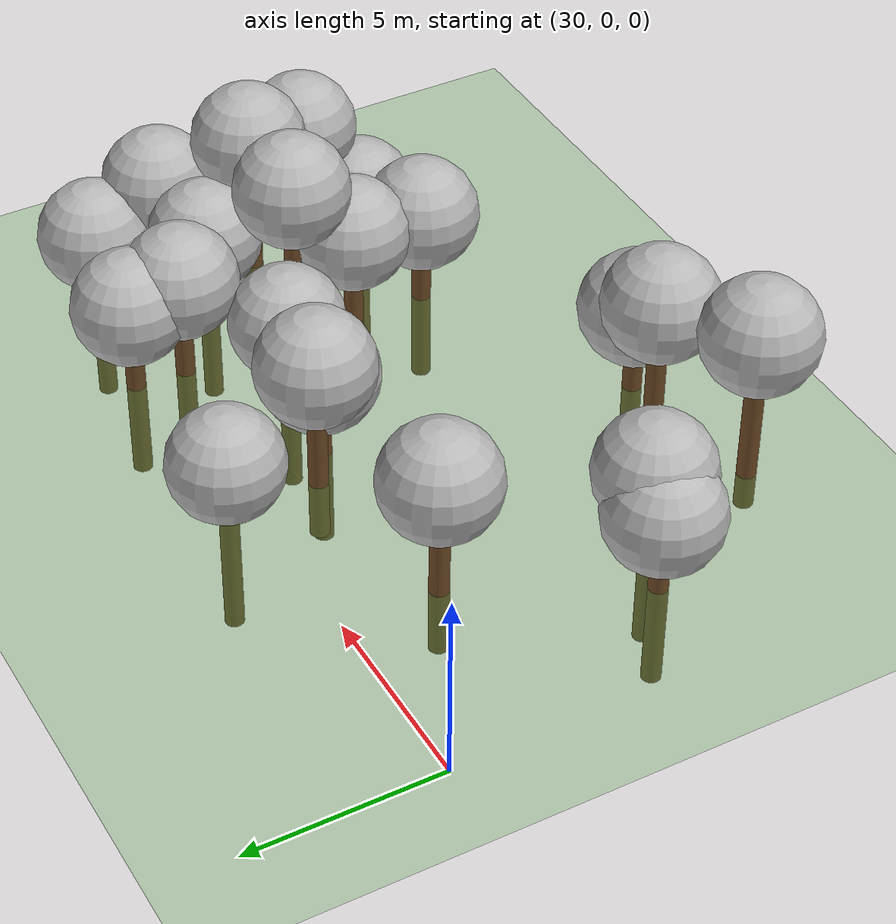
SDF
<sdf version="1.7">
 <world name="default">
  <model name="tree_simple499">
   <static>1</static>
   <link name="link">
    <pose>0 0 0.1 0 -0 0</pose>
    <collision name="collision_trunk">
     <pose>0 0 2 0 -0 0</pose>
     <geometry><cylinder><radius>0.25</radius><length>4</length></cylinder></geometry>
    </collision>
    <collision name="collision_treetop">
     <pose>0 0 5.2 0 -0 0</pose>
     <geometry><sphere><radius>1.5</radius></sphere></geometry>
    </collision>
    <visual name="trunk">
     <pose>0 0 2 0 -0 0</pose>
     <geometry><cylinder><radius>0.25</radius><length>4</length></cylinder></geometry>
     <material>
      <script>
       <uri>model://tree_simple/scripts</uri>
       <uri>model://tree_simple/materials/textures</uri>
       <name>TreeSimple/Trunk</name>
      </script>
     </material>
    </visual>
    <visual name="treetop">
     <pose>0 0 5.2 0 -0 0</pose>
     <geometry><sphere><radius>1.5</radius></sphere></geometry>
     <material>
      <script>
       <uri>model://tree_simple/scripts</uri>
       <uri>model://tree_simple/materials/textures</uri>
       <name>TreeSimple/Treetop</name>
      </script>
     </material>
    </visual>
   </link>
   <pose>49.5773 -0.301034 -3.79417 0 -0 0</pose>
  </model>
  <model name="tree_simple468">
   <static>1</static>
   <link name="link">
    <pose>0 0 0.1 0 -0 0</pose>
    <collision name="collision_trunk">
     <pose>0 0 2 0 -0 0</pose>
     <geometry><cylinder><radius>0.25</radius><length>4</length></cylinder></geometry>
    </collision>
    <collision name="collision_treetop">
     <pose>0 0 5.2 0 -0 0</pose>
     <geometry><sphere><radius>1.5</radius></sphere></geometry>
    </collision>
    <visual name="trunk">
     <pose>0 0 2 0 -0 0</pose>
     <geometry><cylinder><radius>0.25</radius><length>4</length></cylinder></geometry>
     <material>
      <script>
       <uri>model://tree_simple/scripts</uri>
       <uri>model://tree_simple/materials/textures</uri>
       <name>TreeSimple/Trunk</name>
      </script>
     </material>
    </visual>
    <visual name="treetop">
     <pose>0 0 5.2 0 -0 0</pose>
     <geometry><sphere><radius>1.5</radius></sphere></geometry>
     <material>
      <script>
       <uri>model://tree_simple/scripts</uri>
       <uri>model://tree_simple/materials/textures</uri>
       <name>TreeSimple/Treetop</name>
      </script>
     </material>
    </visual>
   </link>
   <pose>33.4354 -7.20044 -2.41626 0 -0 0</pose>
  </model>
  <model name="tree_simple391">
   <static>1</static>
   <link name="link">
    <pose>0 0 0.1 0 -0 0</pose>
    <collision name="collision_trunk">
     <pose>0 0 2 0 -0 0</pose>
     <geometry><cylinder><radius>0.25</radius><length>4</length></cylinder></geometry>
    </collision>
    <collision name="collision_treetop">
     <pose>0 0 5.2 0 -0 0</pose>
     <geometry><sphere><radius>1.5</radius></sphere></geometry>
    </collision>
    <visual name="trunk">
     <pose>0 0 2 0 -0 0</pose>
     <geometry><cylinder><radius>0.25</radius><length>4</length></cylinder></geometry>
     <material>
      <script>
       <uri>model://tree_simple/scripts</uri>
       <uri>model://tree_simple/materials/textures</uri>
       <name>TreeSimple/Trunk</name>
      </script>
     </material>
    </visual>
    <visual name="treetop">
     <pose>0 0 5.2 0 -0 0</pose>
     <geometry><sphere><radius>1.5</radius></sphere></geometry>
     <material>
      <script>
       <uri>model://tree_simple/scripts</uri>
       <uri>model://tree_simple/materials/textures</uri>
       <name>TreeSimple/Treetop</name>
      </script>
     </material>
    </visual>
   </link>
   <pose>35.0521 -11.045 -1.08364 0 -0 0</pose>
  </model>
  <model name="tree_simple385">
   <static>1</static>
   <link name="link">
    <pose>0 0 0.1 0 -0 0</pose>
    <collision name="collision_trunk">
     <pose>0 0 2 0 -0 0</pose>
     <geometry><cylinder><radius>0.25</radius><length>4</length></cylinder></geometry>
    </collision>
    <collision name="collision_treetop">
     <pose>0 0 5.2 0 -0 0</pose>
     <geometry><sphere><radius>1.5</radius></sphere></geometry>
    </collision>
    <visual name="trunk">
     <pose>0 0 2 0 -0 0</pose>
     <geometry><cylinder><radius>0.25</radius><length>4</length></cylinder></geometry>
     <material>
      <script>
       <uri>model://tree_simple/scripts</uri>
       <uri>model://tree_simple/materials/textures</uri>
       <name>TreeSimple/Trunk</name>
      </script>
     </material>
    </visual>
    <visual name="treetop">
     <pose>0 0 5.2 0 -0 0</pose>
     <geometry><sphere><radius>1.5</radius></sphere></geometry>
     <material>
      <script>
       <uri>model://tree_simple/scripts</uri>
       <uri>model://tree_simple/materials/textures</uri>
       <name>TreeSimple/Treetop</name>
      </script>
     </material>
    </visual>
   </link>
   <pose>32.6946 -7.01469 -3.04004 0 -0 0</pose>
  </model>
  <model name="tree_simple380">
   <static>1</static>
   <link name="link">
    <pose>0 0 0.1 0 -0 0</pose>
    <collision name="collision_trunk">
     <pose>0 0 2 0 -0 0</pose>
     <geometry><cylinder><radius>0.25</radius><length>4</length></cylinder></geometry>
    </collision>
    <collision name="collision_treetop">
     <pose>0 0 5.2 0 -0 0</pose>
     <geometry><sphere><radius>1.5</radius></sphere></geometry>
    </collision>
    <visual name="trunk">
     <pose>0 0 2 0 -0 0</pose>
     <geometry><cylinder><radius>0.25</radius><length>4</length></cylinder></geometry>
     <material>
      <script>
       <uri>model://tree_simple/scripts</uri>
       <uri>model://tree_simple/materials/textures</uri>
       <name>TreeSimple/Trunk</name>
      </script>
     </material>
    </visual>
    <visual name="treetop">
     <pose>0 0 5.2 0 -0 0</pose>
     <geometry><sphere><radius>1.5</radius></sphere></geometry>
     <material>
      <script>
       <uri>model://tree_simple/scripts</uri>
       <uri>model://tree_simple/materials/textures</uri>
       <name>TreeSimple/Treetop</name>
      </script>
     </material>
    </visual>
   </link>
   <pose>49.0223 -7.79617 -4.55957 0 -0 0</pose>
  </model>
  <model name="tree_simple378">
   <static>1</static>
   <link name="link">
    <pose>0 0 0.1 0 -0 0</pose>
    <collision name="collision_trunk">
     <pose>0 0 2 0 -0 0</pose>
     <geometry><cylinder><radius>0.25</radius><length>4</length></cylinder></geometry>
    </collision>
    <collision name="collision_treetop">
     <pose>0 0 5.2 0 -0 0</pose>
     <geometry><sphere><radius>1.5</radius></sphere></geometry>
    </collision>
    <visual name="trunk">
     <pose>0 0 2 0 -0 0</pose>
     <geometry><cylinder><radius>0.25</radius><length>4</length></cylinder></geometry>
     <material>
      <script>
       <uri>model://tree_simple/scripts</uri>
       <uri>model://tree_simple/materials/textures</uri>
       <name>TreeSimple/Trunk</name>
      </script>
     </material>
    </visual>
    <visual name="treetop">
     <pose>0 0 5.2 0 -0 0</pose>
     <geometry><sphere><radius>1.5</radius></sphere></geometry>
     <material>
      <script>
       <uri>model://tree_simple/scripts</uri>
       <uri>model://tree_simple/materials/textures</uri>
       <name>TreeSimple/Treetop</name>
      </script>
     </material>
    </visual>
   </link>
   <pose>45.0798 -0.754392 -2.45555 0 -0 0</pose>
  </model>
  <model name="tree_simple363">
   <static>1</static>
   <link name="link">
    <pose>0 0 0.1 0 -0 0</pose>
    <collision name="collision_trunk">
     <pose>0 0 2 0 -0 0</pose>
     <geometry><cylinder><radius>0.25</radius><length>4</length></cylinder></geometry>
    </collision>
    <collision name="collision_treetop">
     <pose>0 0 5.2 0 -0 0</pose>
     <geometry><sphere><radius>1.5</radius></sphere></geometry>
    </collision>
    <visual name="trunk">
     <pose>0 0 2 0 -0 0</pose>
     <geometry><cylinder><radius>0.25</radius><length>4</length></cylinder></geometry>
     <material>
      <script>
       <uri>model://tree_simple/scripts</uri>
       <uri>model://tree_simple/materials/textures</uri>
       <name>TreeSimple/Trunk</name>
      </script>
     </material>
    </visual>
    <visual name="treetop">
     <pose>0 0 5.2 0 -0 0</pose>
     <geometry><sphere><radius>1.5</radius></sphere></geometry>
     <material>
      <script>
       <uri>model://tree_simple/scripts</uri>
       <uri>model://tree_simple/materials/textures</uri>
       <name>TreeSimple/Treetop</name>
      </script>
     </material>
    </visual>
   </link>
   <pose>45.1444 0.582204 -2.82362 0 -0 0</pose>
  </model>
  <model name="tree_simple352">
   <static>1</static>
   <link name="link">
    <pose>0 0 0.1 0 -0 0</pose>
    <collision name="collision_trunk">
     <pose>0 0 2 0 -0 0</pose>
     <geometry><cylinder><radius>0.25</radius><length>4</length></cylinder></geometry>
    </collision>
    <collision name="collision_treetop">
     <pose>0 0 5.2 0 -0 0</pose>
     <geometry><sphere><radius>1.5</radius></sphere></geometry>
    </collision>
    <visual name="trunk">
     <pose>0 0 2 0 -0 0</pose>
     <geometry><cylinder><radius>0.25</radius><length>4</length></cylinder></geometry>
     <material>
      <script>
       <uri>model://tree_simple/scripts</uri>
       <uri>model://tree_simple/materials/textures</uri>
       <name>TreeSimple/Trunk</name>
      </script>
     </material>
    </visual>
    <visual name="treetop">
     <pose>0 0 5.2 0 -0 0</pose>
     <geometry><sphere><radius>1.5</radius></sphere></geometry>
     <material>
      <script>
       <uri>model://tree_simple/scripts</uri>
       <uri>model://tree_simple/materials/textures</uri>
       <name>TreeSimple/Treetop</name>
      </script>
     </material>
    </visual>
   </link>
   <pose>37.7714 -10.0856 -1.64064 0 -0 0</pose>
  </model>
  <model name="tree_simple244">
   <static>1</static>
   <link name="link">
    <pose>0 0 0.1 0 -0 0</pose>
    <collision name="collision_trunk">
     <pose>0 0 2 0 -0 0</pose>
     <geometry><cylinder><radius>0.25</radius><length>4</length></cylinder></geometry>
    </collision>
    <collision name="collision_treetop">
     <pose>0 0 5.2 0 -0 0</pose>
     <geometry><sphere><radius>1.5</radius></sphere></geometry>
    </collision>
    <visual name="trunk">
     <pose>0 0 2 0 -0 0</pose>
     <geometry><cylinder><radius>0.25</radius><length>4</length></cylinder></geometry>
     <material>
      <script>
       <uri>model://tree_simple/scripts</uri>
       <uri>model://tree_simple/materials/textures</uri>
       <name>TreeSimple/Trunk</name>
      </script>
     </material>
    </visual>
    <visual name="treetop">
     <pose>0 0 5.2 0 -0 0</pose>
     <geometry><sphere><radius>1.5</radius></sphere></geometry>
     <material>
      <script>
       <uri>model://tree_simple/scripts</uri>
       <uri>model://tree_simple/materials/textures</uri>
       <name>TreeSimple/Treetop</name>
      </script>
     </material>
    </visual>
   </link>
   <pose>45.172 -3.93448 -0.846225 0 -0 0</pose>
  </model>
  <model name="tree_simple235">
   <static>1</static>
   <link name="link">
    <pose>0 0 0.1 0 -0 0</pose>
    <collision name="collision_trunk">
     <pose>0 0 2 0 -0 0</pose>
     <geometry><cylinder><radius>0.25</radius><length>4</length></cylinder></geometry>
    </collision>
    <collision name="collision_treetop">
     <pose>0 0 5.2 0 -0 0</pose>
     <geometry><sphere><radius>1.5</radius></sphere></geometry>
    </collision>
    <visual name="trunk">
     <pose>0 0 2 0 -0 0</pose>
     <geometry><cylinder><radius>0.25</radius><length>4</length></cylinder></geometry>
     <material>
      <script>
       <uri>model://tree_simple/scripts</uri>
       <uri>model://tree_simple/materials/textures</uri>
       <name>TreeSimple/Trunk</name>
      </script>
     </material>
    </visual>
    <visual name="treetop">
     <pose>0 0 5.2 0 -0 0</pose>
     <geometry><sphere><radius>1.5</radius></sphere></geometry>
     <material>
      <script>
       <uri>model://tree_simple/scripts</uri>
       <uri>model://tree_simple/materials/textures</uri>
       <name>TreeSimple/Treetop</name>
      </script>
     </material>
    </visual>
   </link>
   <pose>47.4649 -2.51878 -3.21955 0 -0 0</pose>
  </model>
  <model name="tree_simple217">
   <static>1</static>
   <link name="link">
    <pose>0 0 0.1 0 -0 0</pose>
    <collision name="collision_trunk">
     <pose>0 0 2 0 -0 0</pose>
     <geometry><cylinder><radius>0.25</radius><length>4</length></cylinder></geometry>
    </collision>
    <collision name="collision_treetop">
     <pose>0 0 5.2 0 -0 0</pose>
     <geometry><sphere><radius>1.5</radius></sphere></geometry>
    </collision>
    <visual name="trunk">
     <pose>0 0 2 0 -0 0</pose>
     <geometry><cylinder><radius>0.25</radius><length>4</length></cylinder></geometry>
     <material>
      <script>
       <uri>model://tree_simple/scripts</uri>
       <uri>model://tree_simple/materials/textures</uri>
       <name>TreeSimple/Trunk</name>
      </script>
     </material>
    </visual>
    <visual name="treetop">
     <pose>0 0 5.2 0 -0 0</pose>
     <geometry><sphere><radius>1.5</radius></sphere></geometry>
     <material>
      <script>
       <uri>model://tree_simple/scripts</uri>
       <uri>model://tree_simple/materials/textures</uri>
       <name>TreeSimple/Treetop</name>
      </script>
     </material>
    </visual>
   </link>
   <pose>49.7701 -2.2584 -2.88644 0 -0 0</pose>
  </model>
  <model name="tree_simple210">
   <static>1</static>
   <link name="link">
    <pose>0 0 0.1 0 -0 0</pose>
    <collision name="collision_trunk">
     <pose>0 0 2 0 -0 0</pose>
     <geometry><cylinder><radius>0.25</radius><length>4</length></cylinder></geometry>
    </collision>
    <collision name="collision_treetop">
     <pose>0 0 5.2 0 -0 0</pose>
     <geometry><sphere><radius>1.5</radius></sphere></geometry>
    </collision>
    <visual name="trunk">
     <pose>0 0 2 0 -0 0</pose>
     <geometry><cylinder><radius>0.25</radius><length>4</length></cylinder></geometry>
     <material>
      <script>
       <uri>model://tree_simple/scripts</uri>
       <uri>model://tree_simple/materials/textures</uri>
       <name>TreeSimple/Trunk</name>
      </script>
     </material>
    </visual>
    <visual name="treetop">
     <pose>0 0 5.2 0 -0 0</pose>
     <geometry><sphere><radius>1.5</radius></sphere></geometry>
     <material>
      <script>
       <uri>model://tree_simple/scripts</uri>
       <uri>model://tree_simple/materials/textures</uri>
       <name>TreeSimple/Treetop</name>
      </script>
     </material>
    </visual>
   </link>
   <pose>49.9611 -6.54237 -2.62591 0 -0 0</pose>
  </model>
  <model name="tree_simple204">
   <static>1</static>
   <link name="link">
    <pose>0 0 0.1 0 -0 0</pose>
    <collision name="collision_trunk">
     <pose>0 0 2 0 -0 0</pose>
     <geometry><cylinder><radius>0.25</radius><length>4</length></cylinder></geometry>
    </collision>
    <collision name="collision_treetop">
     <pose>0 0 5.2 0 -0 0</pose>
     <geometry><sphere><radius>1.5</radius></sphere></geometry>
    </collision>
    <visual name="trunk">
     <pose>0 0 2 0 -0 0</pose>
     <geometry><cylinder><radius>0.25</radius><length>4</length></cylinder></geometry>
     <material>
      <script>
       <uri>model://tree_simple/scripts</uri>
       <uri>model://tree_simple/materials/textures</uri>
       <name>TreeSimple/Trunk</name>
      </script>
     </material>
    </visual>
    <visual name="treetop">
     <pose>0 0 5.2 0 -0 0</pose>
     <geometry><sphere><radius>1.5</radius></sphere></geometry>
     <material>
      <script>
       <uri>model://tree_simple/scripts</uri>
       <uri>model://tree_simple/materials/textures</uri>
       <name>TreeSimple/Treetop</name>
      </script>
     </material>
    </visual>
   </link>
   <pose>40.6573 -2.37352 -2.88367 0 -0 0</pose>
  </model>
  <model name="tree_simple203">
   <static>1</static>
   <link name="link">
    <pose>0 0 0.1 0 -0 0</pose>
    <collision name="collision_trunk">
     <pose>0 0 2 0 -0 0</pose>
     <geometry><cylinder><radius>0.25</radius><length>4</length></cylinder></geometry>
    </collision>
    <collision name="collision_treetop">
     <pose>0 0 5.2 0 -0 0</pose>
     <geometry><sphere><radius>1.5</radius></sphere></geometry>
    </collision>
    <visual name="trunk">
     <pose>0 0 2 0 -0 0</pose>
     <geometry><cylinder><radius>0.25</radius><length>4</length></cylinder></geometry>
     <material>
      <script>
       <uri>model://tree_simple/scripts</uri>
       <uri>model://tree_simple/materials/textures</uri>
       <name>TreeSimple/Trunk</name>
      </script>
     </material>
    </visual>
    <visual name="treetop">
     <pose>0 0 5.2 0 -0 0</pose>
     <geometry><sphere><radius>1.5</radius></sphere></geometry>
     <material>
      <script>
       <uri>model://tree_simple/scripts</uri>
       <uri>model://tree_simple/materials/textures</uri>
       <name>TreeSimple/Treetop</name>
      </script>
     </material>
    </visual>
   </link>
   <pose>48.3599 -4.25982 -1.34153 0 -0 0</pose>
  </model>
  <model name="tree_simple192">
   <static>1</static>
   <link name="link">
    <pose>0 0 0.1 0 -0 0</pose>
    <collision name="collision_trunk">
     <pose>0 0 2 0 -0 0</pose>
     <geometry><cylinder><radius>0.25</radius><length>4</length></cylinder></geometry>
    </collision>
    <collision name="collision_treetop">
     <pose>0 0 5.2 0 -0 0</pose>
     <geometry><sphere><radius>1.5</radius></sphere></geometry>
    </collision>
    <visual name="trunk">
     <pose>0 0 2 0 -0 0</pose>
     <geometry><cylinder><radius>0.25</radius><length>4</length></cylinder></geometry>
     <material>
      <script>
       <uri>model://tree_simple/scripts</uri>
       <uri>model://tree_simple/materials/textures</uri>
       <name>TreeSimple/Trunk</name>
      </script>
     </material>
    </visual>
    <visual name="treetop">
     <pose>0 0 5.2 0 -0 0</pose>
     <geometry><sphere><radius>1.5</radius></sphere></geometry>
     <material>
      <script>
       <uri>model://tree_simple/scripts</uri>
       <uri>model://tree_simple/materials/textures</uri>
       <name>TreeSimple/Treetop</name>
      </script>
     </material>
    </visual>
   </link>
   <pose>39.1898 -10.3769 -2.8356 0 -0 0</pose>
  </model>
  <model name="tree_simple118">
   <static>1</static>
   <link name="link">
    <pose>0 0 0.1 0 -0 0</pose>
    <collision name="collision_trunk">
     <pose>0 0 2 0 -0 0</pose>
     <geometry><cylinder><radius>0.25</radius><length>4</length></cylinder></geometry>
    </collision>
    <collision name="collision_treetop">
     <pose>0 0 5.2 0 -0 0</pose>
     <geometry><sphere><radius>1.5</radius></sphere></geometry>
    </collision>
    <visual name="trunk">
     <pose>0 0 2 0 -0 0</pose>
     <geometry><cylinder><radius>0.25</radius><length>4</length></cylinder></geometry>
     <material>
      <script>
       <uri>model://tree_simple/scripts</uri>
       <uri>model://tree_simple/materials/textures</uri>
       <name>TreeSimple/Trunk</name>
      </script>
     </material>
    </visual>
    <visual name="treetop">
     <pose>0 0 5.2 0 -0 0</pose>
     <geometry><sphere><radius>1.5</radius></sphere></geometry>
     <material>
      <script>
       <uri>model://tree_simple/scripts</uri>
       <uri>model://tree_simple/materials/textures</uri>
       <name>TreeSimple/Treetop</name>
      </script>
     </material>
    </visual>
   </link>
   <pose>35.0151 -2.52683 -1.97358 0 -0 0</pose>
  </model>
  <model name="tree_simple68">
   <static>1</static>
   <link name="link">
    <pose>0 0 0.1 0 -0 0</pose>
    <collision name="collision_trunk">
     <pose>0 0 2 0 -0 0</pose>
     <geometry><cylinder><radius>0.25</radius><length>4</length></cylinder></geometry>
    </collision>
    <collision name="collision_treetop">
     <pose>0 0 5.2 0 -0 0</pose>
     <geometry><sphere><radius>1.5</radius></sphere></geometry>
    </collision>
    <visual name="trunk">
     <pose>0 0 2 0 -0 0</pose>
     <geometry><cylinder><radius>0.25</radius><length>4</length></cylinder></geometry>
     <material>
      <script>
       <uri>model://tree_simple/scripts</uri>
       <uri>model://tree_simple/materials/textures</uri>
       <name>TreeSimple/Trunk</name>
      </script>
     </material>
    </visual>
    <visual name="treetop">
     <pose>0 0 5.2 0 -0 0</pose>
     <geometry><sphere><radius>1.5</radius></sphere></geometry>
     <material>
      <script>
       <uri>model://tree_simple/scripts</uri>
       <uri>model://tree_simple/materials/textures</uri>
       <name>TreeSimple/Treetop</name>
      </script>
     </material>
    </visual>
   </link>
   <pose>43.3406 -2.82078 -3.31621 0 -0 0</pose>
  </model>
  <model name="tree_simple54">
   <static>1</static>
   <link name="link">
    <pose>0 0 0.1 0 -0 0</pose>
    <collision name="collision_trunk">
     <pose>0 0 2 0 -0 0</pose>
     <geometry><cylinder><radius>0.25</radius><length>4</length></cylinder></geometry>
    </collision>
    <collision name="collision_treetop">
     <pose>0 0 5.2 0 -0 0</pose>
     <geometry><sphere><radius>1.5</radius></sphere></geometry>
    </collision>
    <visual name="trunk">
     <pose>0 0 2 0 -0 0</pose>
     <geometry><cylinder><radius>0.25</radius><length>4</length></cylinder></geometry>
     <material>
      <script>
       <uri>model://tree_simple/scripts</uri>
       <uri>model://tree_simple/materials/textures</uri>
       <name>TreeSimple/Trunk</name>
      </script>
     </material>
    </visual>
    <visual name="treetop">
     <pose>0 0 5.2 0 -0 0</pose>
     <geometry><sphere><radius>1.5</radius></sphere></geometry>
     <material>
      <script>
       <uri>model://tree_simple/scripts</uri>
       <uri>model://tree_simple/materials/textures</uri>
       <name>TreeSimple/Treetop</name>
      </script>
     </material>
    </visual>
   </link>
   <pose>40.2708 0.363043 -4.29262 0 -0 0</pose>
  </model>
  <model name="tree_simple28">
   <static>1</static>
   <link name="link">
    <pose>0 0 0.1 0 -0 0</pose>
    <collision name="collision_trunk">
     <pose>0 0 2 0 -0 0</pose>
     <geometry><cylinder><radius>0.25</radius><length>4</length></cylinder></geometry>
    </collision>
    <collision name="collision_treetop">
     <pose>0 0 5.2 0 -0 0</pose>
     <geometry><sphere><radius>1.5</radius></sphere></geometry>
    </collision>
    <visual name="trunk">
     <pose>0 0 2 0 -0 0</pose>
     <geometry><cylinder><radius>0.25</radius><length>4</length></cylinder></geometry>
     <material>
      <script>
       <uri>model://tree_simple/scripts</uri>
       <uri>model://tree_simple/materials/textures</uri>
       <name>TreeSimple/Trunk</name>
      </script>
     </material>
    </visual>
    <visual name="treetop">
     <pose>0 0 5.2 0 -0 0</pose>
     <geometry><sphere><radius>1.5</radius></sphere></geometry>
     <material>
      <script>
       <uri>model://tree_simple/scripts</uri>
       <uri>model://tree_simple/materials/textures</uri>
       <name>TreeSimple/Treetop</name>
      </script>
     </material>
    </visual>
   </link>
   <pose>44.9994 -7.51228 -2.66343 0 -0 0</pose>
  </model>
  <model name="tree_simple19">
   <static>1</static>
   <link name="link">
    <pose>0 0 0.1 0 -0 0</pose>
    <collision name="collision_trunk">
     <pose>0 0 2 0 -0 0</pose>
     <geometry><cylinder><radius>0.25</radius><length>4</length></cylinder></geometry>
    </collision>
    <collision name="collision_treetop">
     <pose>0 0 5.2 0 -0 0</pose>
     <geometry><sphere><radius>1.5</radius></sphere></geometry>
    </collision>
    <visual name="trunk">
     <pose>0 0 2 0 -0 0</pose>
     <geometry><cylinder><radius>0.25</radius><length>4</length></cylinder></geometry>
     <material>
      <script>
       <uri>model://tree_simple/scripts</uri>
       <uri>model://tree_simple/materials/textures</uri>
       <name>TreeSimple/Trunk</name>
      </script>
     </material>
    </visual>
    <visual name="treetop">
     <pose>0 0 5.2 0 -0 0</pose>
     <geometry><sphere><radius>1.5</radius></sphere></geometry>
     <material>
      <script>
       <uri>model://tree_simple/scripts</uri>
       <uri>model://tree_simple/materials/textures</uri>
       <name>TreeSimple/Treetop</name>
      </script>
     </material>
    </visual>
   </link>
   <pose>39.671 -1.77882 -1.72683 0 -0 0</pose>
  </model>
  <model name="tree_simple6">
   <static>1</static>
   <link name="link">
    <pose>0 0 0.1 0 -0 0</pose>
    <collision name="collision_trunk">
     <pose>0 0 2 0 -0 0</pose>
     <geometry><cylinder><radius>0.25</radius><length>4</length></cylinder></geometry>
    </collision>
    <collision name="collision_treetop">
     <pose>0 0 5.2 0 -0 0</pose>
     <geometry><sphere><radius>1.5</radius></sphere></geometry>
    </collision>
    <visual name="trunk">
     <pose>0 0 2 0 -0 0</pose>
     <geometry><cylinder><radius>0.25</radius><length>4</length></cylinder></geometry>
     <material>
      <script>
       <uri>model://tree_simple/scripts</uri>
       <uri>model://tree_simple/materials/textures</uri>
       <name>TreeSimple/Trunk</name>
      </script>
     </material>
    </visual>
    <visual name="treetop">
     <pose>0 0 5.2 0 -0 0</pose>
     <geometry><sphere><radius>1.5</radius></sphere></geometry>
     <material>
      <script>
       <uri>model://tree_simple/scripts</uri>
       <uri>model://tree_simple/materials/textures</uri>
       <name>TreeSimple/Treetop</name>
      </script>
     </material>
    </visual>
   </link>
   <pose>44.8806 -5.45728 -2.50671 0 -0 0</pose>
  </model>
  <model name="ground_plane">
   <static>1</static>
   <link name="link">
    <collision name="collision">
     <geometry><plane><normal>0 0 1</normal><size>250 250</size></plane></geometry>
     <surface><friction><ode><mu>1</mu><mu2>1</mu2></ode></friction></surface>
    </collision>
    <visual name="grass">
     <cast_shadows>0</cast_shadows>
     <geometry><plane><normal>0 0 1</normal><size>150 250</size></plane></geometry>
     <material>
      <script><uri>file://media/materials/scripts/Gazebo.material</uri><name>Gazebo/Grass</name></script>
     </material>
    </visual>
   </link>
  </model>
 </world>
</sdf>
